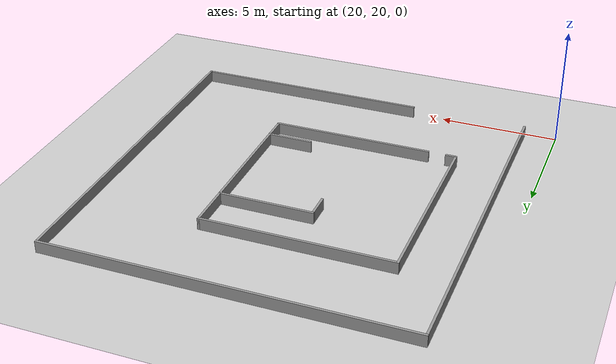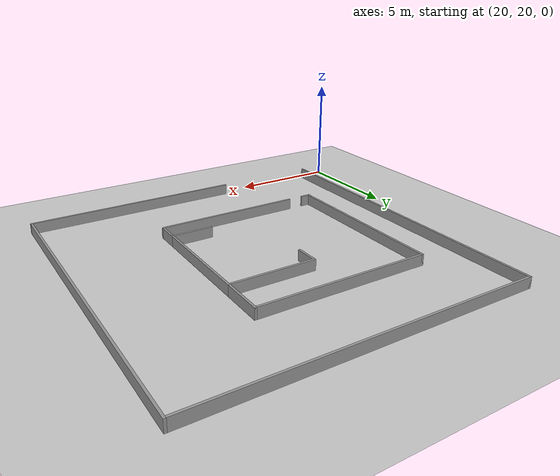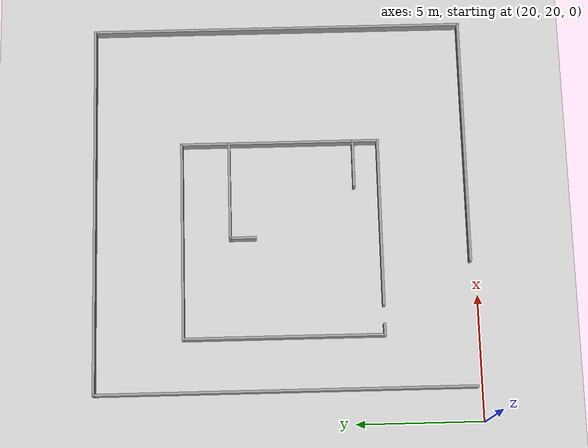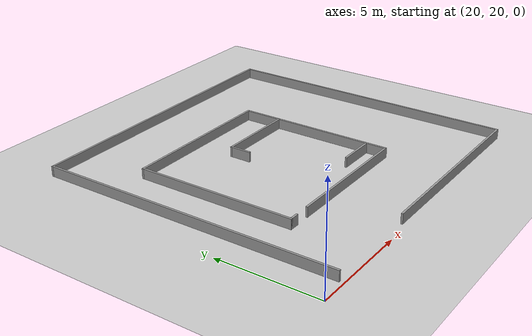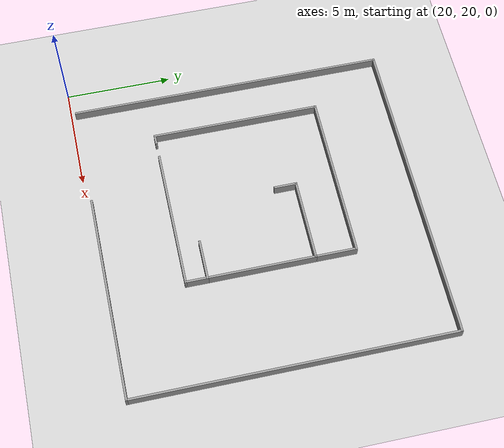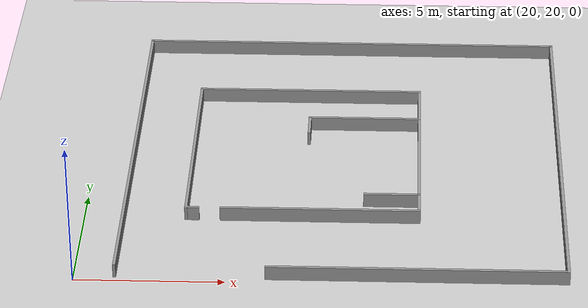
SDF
<sdf version="1.6">
 <world name="default">
  <model name="ground_plane">
   <static>1</static>
   <link name="link">
    <collision name="collision">
     <geometry><plane><normal>0 0 1</normal><size>80 80</size></plane></geometry>
     <surface>
      <contact><collide_bitmask>65535</collide_bitmask></contact>
      <friction><ode><mu>100</mu><mu2>50</mu2></ode></friction>
     </surface>
     <max_contacts>15</max_contacts>
    </collision>
    <visual name="visual">
     <cast_shadows>0</cast_shadows>
     <geometry><plane><normal>0 0 1</normal><size>80 80</size></plane></geometry>
     <material>
      <script><uri>file://media/materials/scripts/gazebo.material</uri><name>Gazebo/Grey</name></script>
     </material>
    </visual>
   </link>
  </model>
  <model name="shape7">
   <pose>28.8 27.7 0 0 -0 0</pose>
   <link name="Wall_14">
    <collision name="Wall_14_Collision">
     <geometry><box><size>15 0.1 0.5</size></box></geometry>
     <pose>0 0 0.25 0 -0 0</pose>
    </collision>
    <visual name="Wall_14_Visual">
     <pose>0 0 0.25 0 -0 0</pose>
     <geometry><box><size>15 0.1 0.5</size></box></geometry>
     <material>
      <script><uri>file://media/materials/scripts/gazebo.material</uri><name>Gazebo/Grey</name></script>
      <ambient>1 1 1 1</ambient>
     </material>
     <meta><layer>0</layer></meta>
    </visual>
    <pose>0 7.45 0 0 -0 0</pose>
   </link>
   <link name="Wall_15">
    <collision name="Wall_15_Collision">
     <geometry><box><size>15 0.1 0.5</size></box></geometry>
     <pose>0 0 0.25 0 -0 0</pose>
    </collision>
    <visual name="Wall_15_Visual">
     <pose>0 0 0.25 0 -0 0</pose>
     <geometry><box><size>15 0.1 0.5</size></box></geometry>
     <material>
      <script><uri>file://media/materials/scripts/gazebo.material</uri><name>Gazebo/Grey</name></script>
      <ambient>1 1 1 1</ambient>
     </material>
     <meta><layer>0</layer></meta>
    </visual>
    <pose>7.45 -0 0 0 -0 -1.5708</pose>
   </link>
   <link name="Wall_16">
    <collision name="Wall_16_Collision">
     <geometry><box><size>10 0.1 0.5</size></box></geometry>
     <pose>0 0 0.25 0 -0 0</pose>
    </collision>
    <visual name="Wall_16_Visual">
     <pose>0 0 0.25 0 -0 0</pose>
     <geometry><box><size>10 0.1 0.5</size></box></geometry>
     <material>
      <script><uri>file://media/materials/scripts/gazebo.material</uri><name>Gazebo/Grey</name></script>
      <ambient>1 1 1 1</ambient>
     </material>
     <meta><layer>0</layer></meta>
    </visual>
    <pose>2.5 -7.45 0 0 -0 3.14159</pose>
   </link>
   <link name="Wall_18">
    <collision name="Wall_18_Collision">
     <geometry><box><size>15 0.1 0.5</size></box></geometry>
     <pose>0 0 0.25 0 -0 0</pose>
    </collision>
    <visual name="Wall_18_Visual">
     <pose>0 0 0.25 0 -0 0</pose>
     <geometry><box><size>15 0.1 0.5</size></box></geometry>
     <material>
      <script><uri>file://media/materials/scripts/gazebo.material</uri><name>Gazebo/Grey</name></script>
      <ambient>1 1 1 1</ambient>
     </material>
     <meta><layer>0</layer></meta>
    </visual>
    <pose>-7.45 -0 0 0 -0 -1.5708</pose>
   </link>
   <static>1</static>
  </model>
  <model name="shape6">
   <pose>27.4 27.7 0 0 -0 0</pose>
   <link name="Wall_0">
    <collision name="Wall_0_Collision">
     <geometry><box><size>8 0.1 0.5</size></box></geometry>
     <pose>0 0 0.25 0 -0 0</pose>
    </collision>
    <visual name="Wall_0_Visual">
     <pose>0 0 0.25 0 -0 0</pose>
     <geometry><box><size>8 0.1 0.5</size></box></geometry>
     <material>
      <script><uri>file://media/materials/scripts/gazebo.material</uri><name>Gazebo/Grey</name></script>
      <ambient>1 1 1 1</ambient>
     </material>
     <meta><layer>0</layer></meta>
    </visual>
    <pose>-3.95 0 0 0 -0 -1.5708</pose>
   </link>
   <link name="Wall_1">
    <collision name="Wall_1_Collision">
     <geometry><box><size>0.5 0.1 0.5</size></box></geometry>
     <pose>0 0 0.25 0 -0 0</pose>
    </collision>
    <visual name="Wall_1_Visual">
     <pose>0 0 0.25 0 -0 0</pose>
     <geometry><box><size>0.5 0.1 0.5</size></box></geometry>
     <material>
      <script><uri>file://media/materials/scripts/gazebo.material</uri><name>Gazebo/Grey</name></script>
      <ambient>1 1 1 1</ambient>
     </material>
     <meta><layer>0</layer></meta>
    </visual>
    <pose>-3.75 -3.95 0 0 -0 0</pose>
   </link>
   <link name="Wall_10">
    <collision name="Wall_10_Collision">
     <geometry><box><size>1.95 0.1 0.5</size></box></geometry>
     <pose>0 0 0.25 0 -0 0</pose>
    </collision>
    <visual name="Wall_10_Visual">
     <pose>0 0 0.25 0 -0 0</pose>
     <geometry><box><size>1.95 0.1 0.5</size></box></geometry>
     <material>
      <script><uri>file://media/materials/scripts/gazebo.material</uri><name>Gazebo/Grey</name></script>
      <ambient>1 1 1 1</ambient>
     </material>
     <meta><layer>0</layer></meta>
    </visual>
    <pose>3.025 -2.95 0 0 -0 3.14159</pose>
   </link>
   <link name="Wall_12">
    <collision name="Wall_12_Collision">
     <geometry><box><size>1.1 0.1 0.5</size></box></geometry>
     <pose>0 0 0.25 0 -0 0</pose>
    </collision>
    <visual name="Wall_12_Visual">
     <pose>0 0 0.25 0 -0 0</pose>
     <geometry><box><size>1.1 0.1 0.5</size></box></geometry>
     <material>
      <script><uri>file://media/materials/scripts/gazebo.material</uri><name>Gazebo/Grey</name></script>
      <ambient>1 1 1 1</ambient>
     </material>
     <meta><layer>0</layer></meta>
    </visual>
    <pose>3.95 -3.45 0 0 -0 -1.5708</pose>
   </link>
   <link name="Wall_13">
    <collision name="Wall_13_Collision">
     <geometry><box><size>6.8 0.1 0.5</size></box></geometry>
     <pose>0 0 0.25 0 -0 0</pose>
    </collision>
    <visual name="Wall_13_Visual">
     <pose>0 0 0.25 0 -0 0</pose>
     <geometry><box><size>6.8 0.1 0.5</size></box></geometry>
     <material>
      <script><uri>file://media/materials/scripts/gazebo.material</uri><name>Gazebo/Grey</name></script>
      <ambient>1 1 1 1</ambient>
     </material>
     <meta><layer>0</layer></meta>
    </visual>
    <pose>0.6 -3.95 0 0 -0 3.14159</pose>
   </link>
   <link name="Wall_3">
    <collision name="Wall_3_Collision">
     <geometry><box><size>8 0.1 0.5</size></box></geometry>
     <pose>0 0 0.25 0 -0 0</pose>
    </collision>
    <visual name="Wall_3_Visual">
     <pose>0 0 0.25 0 -0 0</pose>
     <geometry><box><size>8 0.1 0.5</size></box></geometry>
     <material>
      <script><uri>file://media/materials/scripts/gazebo.material</uri><name>Gazebo/Grey</name></script>
      <ambient>1 1 1 1</ambient>
     </material>
     <meta><layer>0</layer></meta>
    </visual>
    <pose>-0 3.95 0 0 -0 0</pose>
   </link>
   <link name="Wall_4">
    <collision name="Wall_4_Collision">
     <geometry><box><size>2 0.1 0.5</size></box></geometry>
     <pose>0 0 0.25 0 -0 0</pose>
    </collision>
    <visual name="Wall_4_Visual">
     <pose>0 0 0.25 0 -0 0</pose>
     <geometry><box><size>2 0.1 0.5</size></box></geometry>
     <material>
      <script><uri>file://media/materials/scripts/gazebo.material</uri><name>Gazebo/Grey</name></script>
      <ambient>1 1 1 1</ambient>
     </material>
     <meta><layer>0</layer></meta>
    </visual>
    <pose>3.95 3 0 0 -0 -1.5708</pose>
   </link>
   <link name="Wall_5">
    <collision name="Wall_5_Collision">
     <geometry><box><size>5.1 0.1 0.5</size></box></geometry>
     <pose>0 0 0.25 0 -0 0</pose>
    </collision>
    <visual name="Wall_5_Visual">
     <pose>0 0 0.25 0 -0 0</pose>
     <geometry><box><size>5.1 0.1 0.5</size></box></geometry>
     <material>
      <script><uri>file://media/materials/scripts/gazebo.material</uri><name>Gazebo/Grey</name></script>
      <ambient>1 1 1 1</ambient>
     </material>
     <meta><layer>0</layer></meta>
    </visual>
    <pose>3.95 -0.45 0 0 -0 -1.5708</pose>
   </link>
   <link name="Wall_7">
    <collision name="Wall_7_Collision">
     <geometry><box><size>4 0.1 0.5</size></box></geometry>
     <pose>0 0 0.25 0 -0 0</pose>
    </collision>
    <visual name="Wall_7_Visual">
     <pose>0 0 0.25 0 -0 0</pose>
     <geometry><box><size>4 0.1 0.5</size></box></geometry>
     <material>
      <script><uri>file://media/materials/scripts/gazebo.material</uri><name>Gazebo/Grey</name></script>
      <ambient>1 1 1 1</ambient>
     </material>
     <meta><layer>0</layer></meta>
    </visual>
    <pose>2 2.05 0 0 -0 3.14159</pose>
   </link>
   <link name="Wall_8">
    <collision name="Wall_8_Collision">
     <geometry><box><size>1.1 0.1 0.5</size></box></geometry>
     <pose>0 0 0.25 0 -0 0</pose>
    </collision>
    <visual name="Wall_8_Visual">
     <pose>0 0 0.25 0 -0 0</pose>
     <geometry><box><size>1.1 0.1 0.5</size></box></geometry>
     <material>
      <script><uri>file://media/materials/scripts/gazebo.material</uri><name>Gazebo/Grey</name></script>
      <ambient>1 1 1 1</ambient>
     </material>
     <meta><layer>0</layer></meta>
    </visual>
    <pose>0.05 1.55 0 0 -0 -1.5708</pose>
   </link>
   <static>1</static>
  </model>
 </world>
</sdf>
